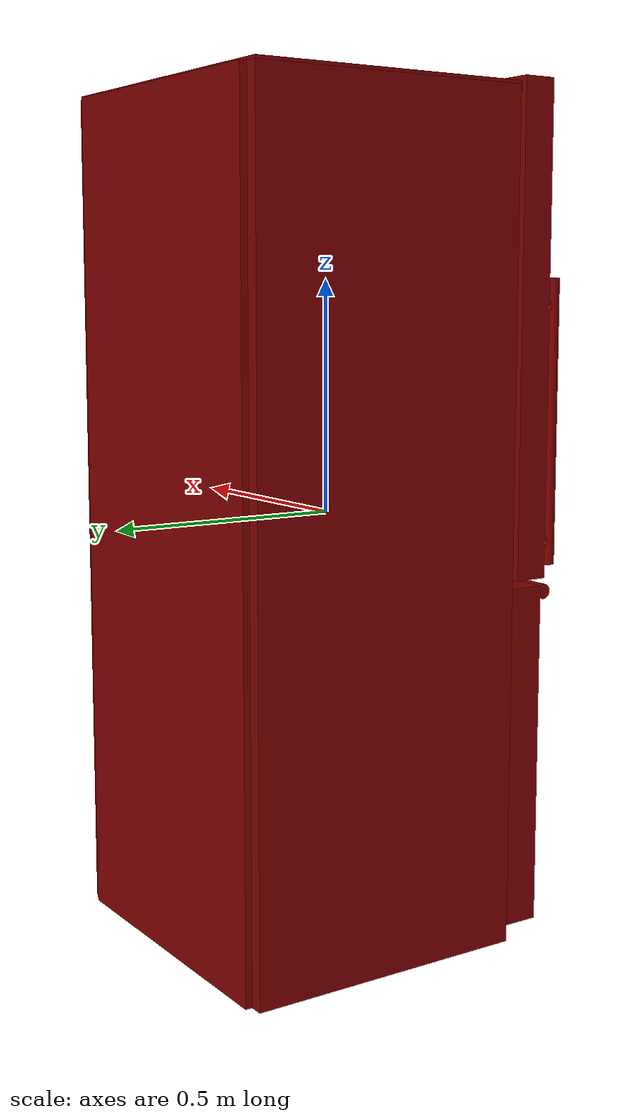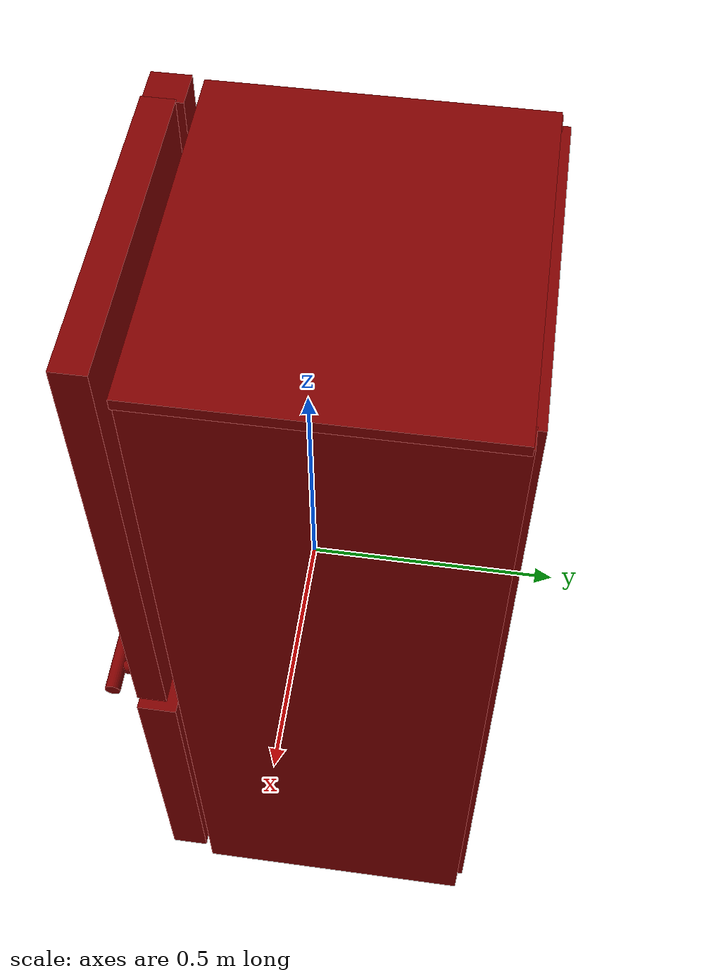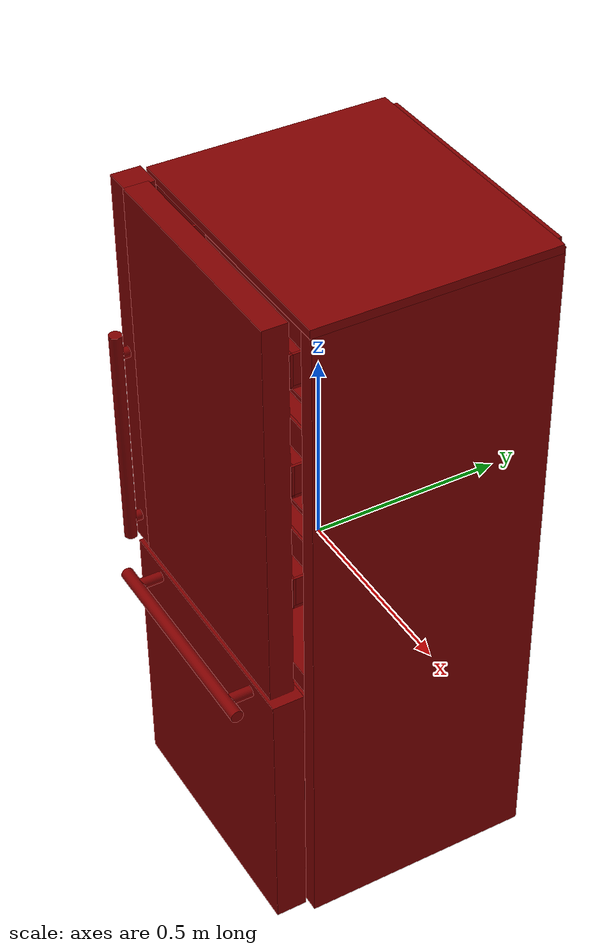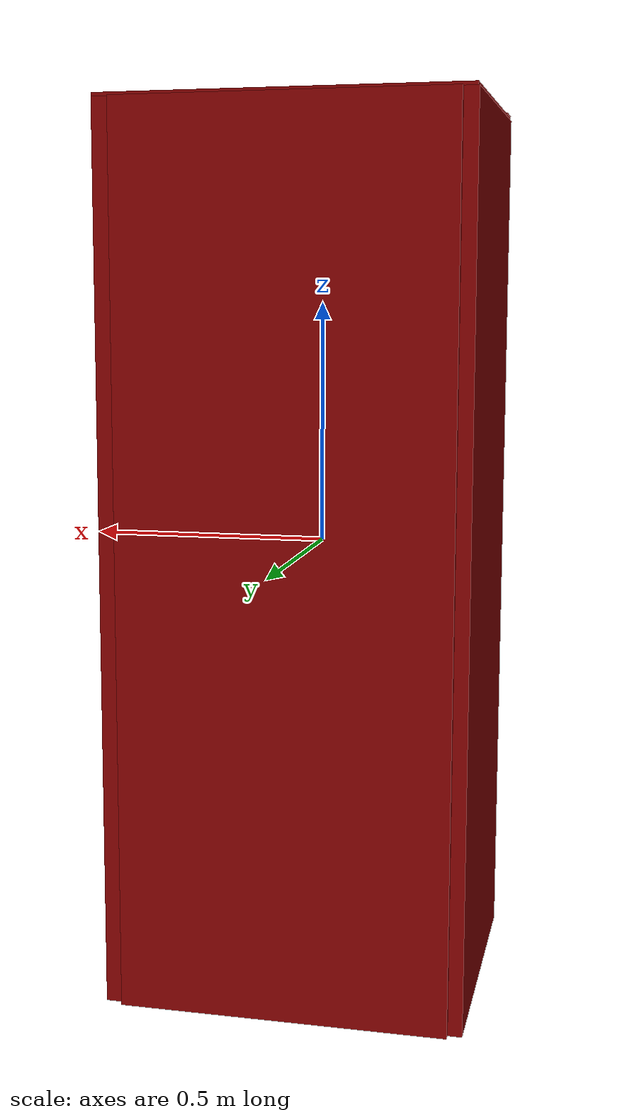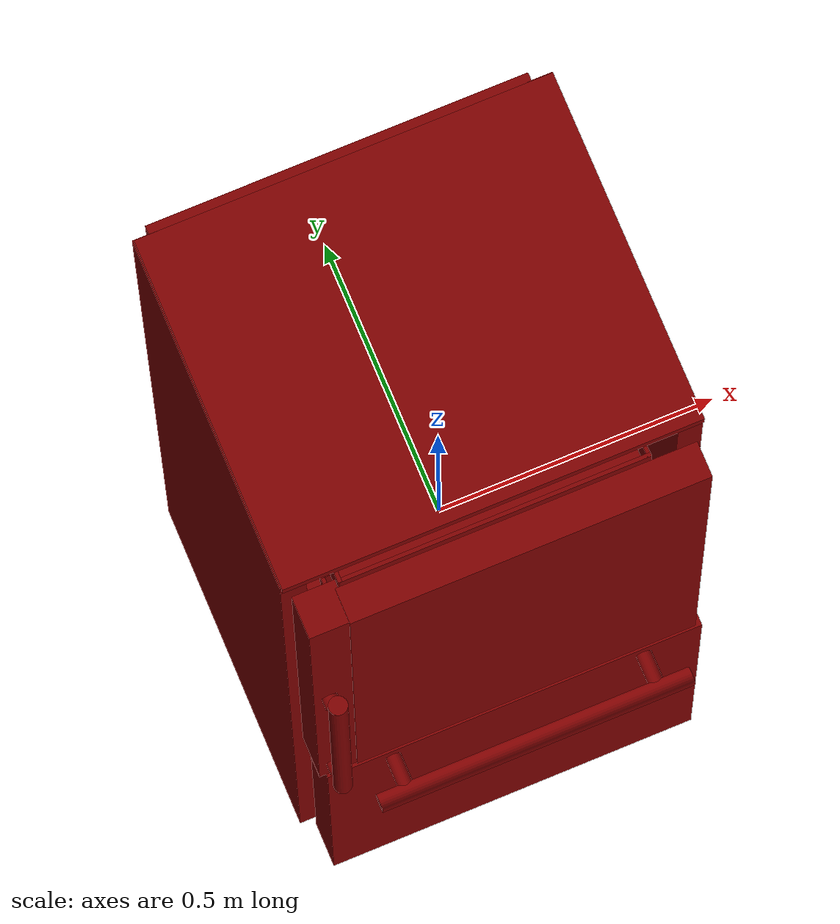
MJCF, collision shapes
<mujoco model="model">
  <compiler angle="radian"/>
  <asset>
    <mesh file="visuals/Body001.obj" name="Body001_vis"/>
    <mesh file="visuals/Door001.obj" name="Door001_vis"/>
    <mesh file="visuals/Door001_Clear.obj" name="Door001_Clear_vis"/>
    <mesh file="visuals/Drawer001.obj" name="Drawer001_vis"/>
    <texture file="visuals/T_BC001.png" name="Body001_material" type="2d"/>
    <material name="Body001_material" rgba="1 1 1 1.0" texture="Body001_material" shininess="2" specular="2"/>
    <texture file="visuals/T_BC001.png" name="Door001_material" type="2d"/>
    <material name="Door001_material" rgba="1 1 1 1.0" texture="Door001_material" shininess="2" specular="2"/>
    <material name="Door001_Clear_material" rgba="0.800000011920929 0.800000011920929 0.800000011920929 0.1558031141757965" shininess="1" specular="1"/>
    <texture file="visuals/T_BC001.png" name="Drawer001_material" type="2d"/>
    <material name="Drawer001_material" rgba="1 1 1 1.0" texture="Drawer001_material" shininess="2" specular="2"/>
  </asset>
  <default>
    <default class="visual">
      <geom conaffinity="0" contype="0" group="1" type="mesh"/>
    </default>
    <default class="collision">
      <geom group="0" rgba="0.5 0 0 0.5"/>
    </default>
    <default class="spawn">
      <geom group="0" rgba="1 1 1 0.5" contype="0" conaffinity="0"/>
      <site group="0" rgba="1 1 1 0.5"/>
    </default>
    <default class="region">
      <geom group="1" conaffinity="0" contype="0" rgba="0 1 0 0"/>
    </default>
  </default>
  <worldbody>
    <body>
      <body name="object">
        <geom mesh="Body001_vis" type="mesh" solimp="0.998 0.998 0.001" solref="0.001 1" density="100" friction="0.95 0.3 0.1" class="visual" material="Body001_material"/>
        <geom class="collision" type="box" pos="0.340463 0.083927 -0.010428" size="0.02158282697200775 0.30839863419532776 0.8937559127807617" quat="1.0 0.0 0.0 0.0"/>
        <geom class="collision" type="box" pos="-0.339866 0.083481 -0.010428" size="0.022179441526532173 0.3083881735801697 0.8937559127807617" quat="1.0 0.0 0.0 0.0"/>
        <geom class="collision" type="box" pos="0.000422 0.122973 0.525865" size="0.3166264593601227 0.24346056580543518 0.006901415530592203" quat="1.0 0.0 0.0 0.0"/>
        <geom class="collision" type="box" pos="0.000422 0.122973 0.204604" size="0.3166264593601227 0.24346056580543518 0.006901415530592203" quat="1.0 0.0 0.0 0.0"/>
        <geom class="collision" type="box" pos="-0.003595 0.385144 -0.010428" size="0.32996004819869995 0.02151595801115036 0.8937116861343384" quat="1.0 0.0 0.0 0.0"/>
        <geom class="collision" type="box" pos="-0.006792 0.080410 -0.867514" size="0.31572335958480835 0.3091362714767456 0.03766892850399017" quat="1.0 0.0 0.0 0.0"/>
        <geom class="collision" type="box" pos="0.001185 0.080410 0.879447" size="0.3608611524105072 0.30914977192878723 0.010952879674732685" quat="1.0 0.0 0.0 0.0"/>
        <geom class="collision" type="box" pos="-0.001475 0.072153 -0.138532" size="0.3271796405315399 0.2942807078361511 0.027877328917384148" quat="1.0 0.0 0.0 0.0"/>
        <geom class="collision" type="box" pos="-0.001475 0.077931 -0.483788" size="0.3271796405315399 0.29028019309043884 0.00872065033763647" quat="1.0 0.0 0.0 0.0"/>
        <body name="Door001">
          <joint axis="0.0 0.0 1.0" pos="0.317691 -0.293428 0.387510" limited="true" name="Door001_joint" range="0.0 1.5707963267948966" type="hinge" damping="1" frictionloss="1" armature=".01" stiffness="0.05"/>
          <geom mesh="Door001_vis" type="mesh" solimp="0.998 0.998 0.001" solref="0.001 1" density="100" friction="0.95 0.3 0.1" class="visual" material="Door001_material"/>
          <geom class="collision" type="box" pos="0.025641 -0.292300 0.390387" size="0.3090619146823883 0.031012849882245064 0.5147960782051086" quat="1.0 0.0 0.0 0.0"/>
          <geom class="collision" type="box" pos="-0.314718 -0.283934 0.389538" size="0.03672926500439644 0.036700353026390076 0.5139484405517578" quat="1.0 0.0 0.0 0.0"/>
          <geom class="collision" type="cylinder" pos="-0.321510 -0.351952 0.201689" size="0.016481643542647362 0.30258530378341675" quat="1.0 0.0 0.0 0.0"/>
          <geom class="collision" type="cylinder" pos="-0.324204 -0.310402 -0.049076" size="0.013792290352284908 0.028793584555387497" quat="0.7071067094802856 0.7071068286895752 0.0 0.0"/>
          <geom class="collision" type="cylinder" pos="-0.324204 -0.310402 0.445068" size="0.013792290352284908 0.028793584555387497" quat="0.7071067094802856 0.7071068286895752 0.0 0.0"/>
          <body name="Door001_Clear">
            <geom mesh="Door001_Clear_vis" type="mesh" solimp="0.998 0.998 0.001" solref="0.001 1" density="100" friction="0.95 0.3 0.1" class="visual" material="Door001_Clear_material"/>
            <geom class="collision" type="box" pos="0.006142 -0.138226 0.730152" size="0.2689642906188965 0.0034261734690517187 0.043268319219350815" quat="1.0 0.0 0.0 0.0"/>
            <geom class="collision" type="box" pos="0.006142 -0.222272 0.730152" size="0.2689642906188965 0.003426218405365944 0.043268319219350815" quat="1.0 0.0 0.0 0.0"/>
            <geom class="collision" type="box" pos="0.006142 -0.180939 0.690531" size="0.2689642906188965 0.043267715722322464 0.003921642433851957" quat="1.0 0.0 0.0 0.0"/>
            <geom class="collision" type="box" pos="0.271387 -0.181029 0.730152" size="0.0034263073466718197 0.04462076723575592 0.043268319219350815" quat="1.0 0.0 0.0 0.0"/>
            <geom class="collision" type="box" pos="-0.261532 -0.181029 0.730152" size="0.0034263073466718197 0.044620782136917114 0.043268319219350815" quat="1.0 0.0 0.0 0.0"/>
            <geom class="collision" type="box" pos="0.006142 -0.138226 0.436024" size="0.2689642906188965 0.00342623726464808 0.043268319219350815" quat="1.0 0.0 0.0 0.0"/>
            <geom class="collision" type="box" pos="0.006142 -0.222272 0.436024" size="0.2689642906188965 0.0034262393601238728 0.043268319219350815" quat="1.0 0.0 0.0 0.0"/>
            <geom class="collision" type="box" pos="0.006142 -0.180939 0.396402" size="0.2689642906188965 0.043267879635095596 0.003921642433851957" quat="1.0 0.0 0.0 0.0"/>
            <geom class="collision" type="box" pos="0.271387 -0.181029 0.436024" size="0.0034263073466718197 0.04462093487381935 0.043268319219350815" quat="1.0 0.0 0.0 0.0"/>
            <geom class="collision" type="box" pos="-0.261532 -0.181029 0.436024" size="0.0034263073466718197 0.044620949774980545 0.043268319219350815" quat="1.0 0.0 0.0 0.0"/>
            <geom class="collision" type="box" pos="0.006142 -0.138226 0.111753" size="0.2689642906188965 0.0034262477420270443 0.043268319219350815" quat="1.0 0.0 0.0 0.0"/>
            <geom class="collision" type="box" pos="0.006142 -0.222272 0.111753" size="0.2689642906188965 0.003426249837502837 0.043268319219350815" quat="1.0 0.0 0.0 0.0"/>
            <geom class="collision" type="box" pos="0.006142 -0.180939 0.072132" size="0.2689642906188965 0.04326796531677246 0.003921642433851957" quat="1.0 0.0 0.0 0.0"/>
            <geom class="collision" type="box" pos="0.271387 -0.181029 0.111753" size="0.0034263073466718197 0.04462101683020592 0.043268319219350815" quat="1.0 0.0 0.0 0.0"/>
            <geom class="collision" type="box" pos="-0.261532 -0.181029 0.111753" size="0.0034263073466718197 0.04462103173136711 0.043268319219350815" quat="1.0 0.0 0.0 0.0"/>
          </body>
        </body>
        <body name="Drawer001">
          <joint axis="0.0 -1.0 0.0" pos="0.000759 -0.028283 -0.511354" limited="true" name="Drawer001_joint" range="0.0 0.5" type="slide" damping="1" frictionloss="1" armature=".01" stiffness="0.05"/>
          <geom mesh="Drawer001_vis" type="mesh" solimp="0.998 0.998 0.001" solref="0.001 1" density="100" friction="0.95 0.3 0.1" class="visual" material="Drawer001_material"/>
          <geom class="collision" type="box" pos="0.004932 -0.282343 -0.512574" size="0.34290027618408203 0.0409703366458416 0.3695644438266754" quat="1.0 0.0 0.0 0.0"/>
          <geom class="collision" type="box" pos="-0.016958 0.338931 -0.659915" size="0.25502824783325195 0.011137427762150764 0.1583707183599472" quat="1.0 0.0 0.0 0.0"/>
          <geom class="collision" type="box" pos="-0.270398 0.031509 -0.660702" size="0.007753835059702396 0.3092717230319977 0.1608709692955017" quat="1.0 0.0 0.0 0.0"/>
          <geom class="collision" type="box" pos="0.234025 0.031509 -0.659915" size="0.007753829006105661 0.30927151441574097 0.1583707183599472" quat="1.0 0.0 0.0 0.0"/>
          <geom class="collision" type="box" pos="-0.016958 0.037075 -0.809992" size="0.255027711391449 0.3109593093395233 0.0069293007254600525" quat="1.0 0.0 0.0 0.0"/>
          <geom class="collision" type="cylinder" pos="0.014190 -0.391507 -0.173722" size="0.016481643542647362 0.2865520119667053" quat="0.7071068286895752 -0.0 0.7071067690849304 0.0"/>
          <geom class="collision" type="cylinder" pos="-0.219280 -0.353570 -0.173735" size="0.013792290352284908 0.028793584555387497" quat="0.7071067094802856 0.7071068286895752 0.0 0.0"/>
          <geom class="collision" type="cylinder" pos="0.240480 -0.353570 -0.175594" size="0.014124779962003231 0.02948770858347416" quat="0.7071067094802856 0.7071068286895752 0.0 0.0"/>
        </body>
        <geom class="region" name="reg_main" type="box" pos="0.0 0.0416735 0.0" size="0.362046 0.3649865 0.905183"/>
      </body>
    </body>
  </worldbody>
  <actuator>
    <motor name="Door001_joint_actuator" joint="Door001_joint" gear="50"/>
    <motor name="Drawer001_joint_actuator" joint="Drawer001_joint" gear="50"/>
  </actuator>
</mujoco>
